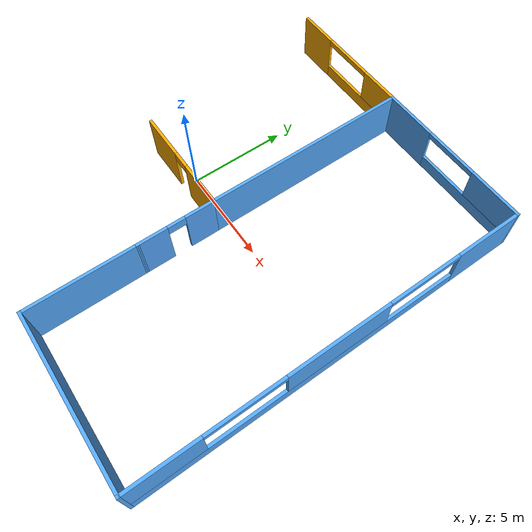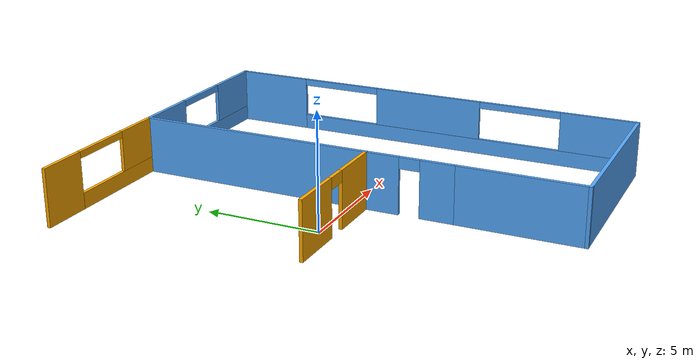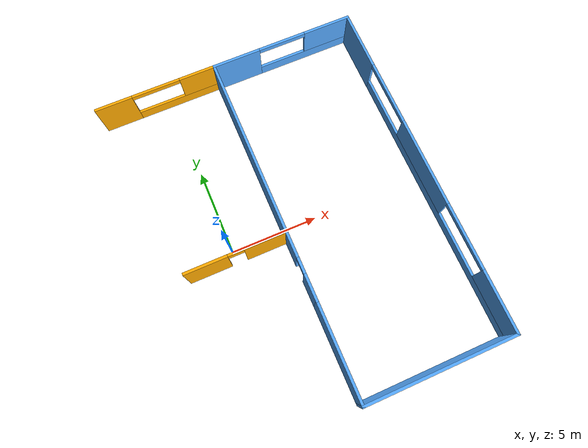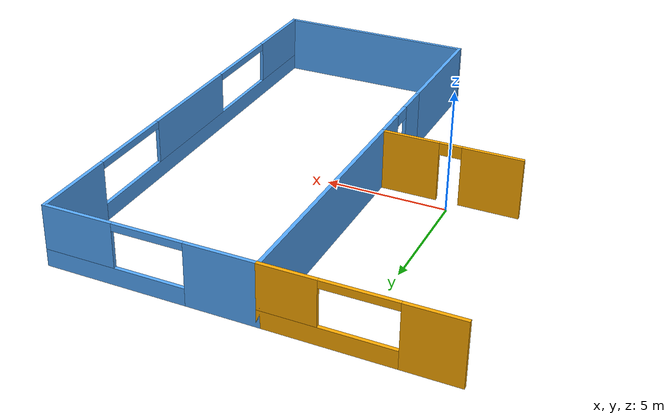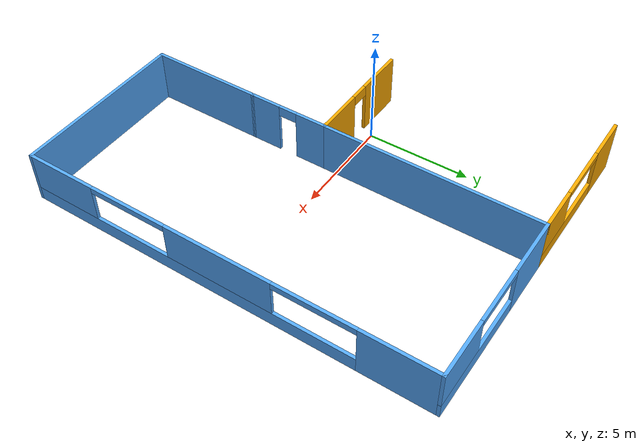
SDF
<sdf version="1.6">
 <model name="Building">
  <link name="Wall_10">
   <pose>2.99997 -7.175 0 0 -0 1.5708</pose>
   <visual name="Wall_10_Visual">
    <pose>0 0 1.25 0 -0 0</pose>
    <geometry><box><size>5.5 0.15 2.5</size></box></geometry>
    <material>
     <script><uri>file://media/materials/scripts/gazebo.material</uri><name>Gazebo/Grey</name></script>
     <ambient>0.333333 0.666667 1 1</ambient>
     <diffuse>0.7 0.7 0.7 1</diffuse>
     <specular>0.01 0.01 0.01 1</specular>
     <emissive>0 0 0 1</emissive>
    </material>
    <meta><layer>0</layer></meta>
   </visual>
   <collision name="Wall_10_Collision">
    <pose>0 0 1.25 0 -0 0</pose>
    <geometry><box><size>5.5 0.15 2.5</size></box></geometry>
    <surface>
     <friction>
      <ode><mu>1</mu><mu2>1</mu2><fdir1>0 0 0</fdir1><slip1>0</slip1><slip2>0</slip2></ode>
      <torsional>
       <coefficient>1</coefficient>
       <patch_radius>0</patch_radius>
       <surface_radius>0</surface_radius>
       <use_patch_radius>1</use_patch_radius>
       <ode><slip>0</slip></ode>
      </torsional>
     </friction>
     <bounce><restitution_coefficient>0</restitution_coefficient><threshold>1e+06</threshold></bounce>
     <contact>
      <collide_without_contact>0</collide_without_contact>
      <collide_without_contact_bitmask>1</collide_without_contact_bitmask>
      <collide_bitmask>1</collide_bitmask>
      <ode>
       <soft_cfm>0</soft_cfm>
       <soft_erp>0.2</soft_erp>
       <kp>1e+13</kp>
       <kd>1</kd>
       <max_vel>0.01</max_vel>
       <min_depth>0</min_depth>
      </ode>
      <bullet>
       <split_impulse>1</split_impulse>
       <split_impulse_penetration_threshold>-0.01</split_impulse_penetration_threshold>
       <soft_cfm>0</soft_cfm>
       <soft_erp>0.2</soft_erp>
       <kp>1e+13</kp>
       <kd>1</kd>
      </bullet>
     </contact>
    </surface>
   </collision>
  </link>
  <link name="Wall_53">
   <pose>0.190752 -0.639237 0 0 -0 0</pose>
   <visual name="Wall_53_Visual_0">
    <pose>-1.66349 0 1.25 0 -0 0</pose>
    <geometry><box><size>2.42302 0.15 2.5</size></box></geometry>
    <material>
     <script><uri>file://media/materials/scripts/gazebo.material</uri><name>Gazebo/Grey</name></script>
     <ambient>1 0.666667 0 1</ambient>
     <diffuse>0.7 0.7 0.7 1</diffuse>
     <specular>0.01 0.01 0.01 1</specular>
     <emissive>0 0 0 1</emissive>
    </material>
    <meta><layer>0</layer></meta>
   </visual>
   <visual name="Wall_53_Visual_1">
    <pose>1.66151 0 1.25 0 -0 0</pose>
    <geometry><box><size>2.42698 0.15 2.5</size></box></geometry>
    <material>
     <script><uri>file://media/materials/scripts/gazebo.material</uri><name>Gazebo/Grey</name></script>
     <ambient>1 0.666667 0 1</ambient>
     <diffuse>0.7 0.7 0.7 1</diffuse>
     <specular>0.01 0.01 0.01 1</specular>
     <emissive>0 0 0 1</emissive>
    </material>
    <meta><layer>0</layer></meta>
   </visual>
   <visual name="Wall_53_Visual_2">
    <pose>-0.001979 0 2.25 0 -0 0</pose>
    <geometry><box><size>0.9 0.15 0.5</size></box></geometry>
    <material>
     <script><uri>file://media/materials/scripts/gazebo.material</uri><name>Gazebo/Grey</name></script>
     <ambient>1 0.666667 0 1</ambient>
     <diffuse>0.7 0.7 0.7 1</diffuse>
     <specular>0.01 0.01 0.01 1</specular>
     <emissive>0 0 0 1</emissive>
    </material>
    <meta><layer>0</layer></meta>
   </visual>
   <collision name="Wall_53_Collision_0">
    <pose>-1.66349 0 1.25 0 -0 0</pose>
    <geometry><box><size>2.42302 0.15 2.5</size></box></geometry>
    <surface>
     <friction>
      <ode><mu>1</mu><mu2>1</mu2><fdir1>0 0 0</fdir1><slip1>0</slip1><slip2>0</slip2></ode>
      <torsional>
       <coefficient>1</coefficient>
       <patch_radius>0</patch_radius>
       <surface_radius>0</surface_radius>
       <use_patch_radius>1</use_patch_radius>
       <ode><slip>0</slip></ode>
      </torsional>
     </friction>
     <bounce><restitution_coefficient>0</restitution_coefficient><threshold>1e+06</threshold></bounce>
     <contact>
      <collide_without_contact>0</collide_without_contact>
      <collide_without_contact_bitmask>1</collide_without_contact_bitmask>
      <collide_bitmask>1</collide_bitmask>
      <ode>
       <soft_cfm>0</soft_cfm>
       <soft_erp>0.2</soft_erp>
       <kp>1e+13</kp>
       <kd>1</kd>
       <max_vel>0.01</max_vel>
       <min_depth>0</min_depth>
      </ode>
      <bullet>
       <split_impulse>1</split_impulse>
       <split_impulse_penetration_threshold>-0.01</split_impulse_penetration_threshold>
       <soft_cfm>0</soft_cfm>
       <soft_erp>0.2</soft_erp>
       <kp>1e+13</kp>
       <kd>1</kd>
      </bullet>
     </contact>
    </surface>
   </collision>
   <collision name="Wall_53_Collision_1">
    <pose>1.66151 0 1.25 0 -0 0</pose>
    <geometry><box><size>2.42698 0.15 2.5</size></box></geometry>
    <surface>
     <friction>
      <ode><mu>1</mu><mu2>1</mu2><fdir1>0 0 0</fdir1><slip1>0</slip1><slip2>0</slip2></ode>
      <torsional>
       <coefficient>1</coefficient>
       <patch_radius>0</patch_radius>
       <surface_radius>0</surface_radius>
       <use_patch_radius>1</use_patch_radius>
       <ode><slip>0</slip></ode>
      </torsional>
     </friction>
     <bounce><restitution_coefficient>0</restitution_coefficient><threshold>1e+06</threshold></bounce>
     <contact>
      <collide_without_contact>0</collide_without_contact>
      <collide_without_contact_bitmask>1</collide_without_contact_bitmask>
      <collide_bitmask>1</collide_bitmask>
      <ode>
       <soft_cfm>0</soft_cfm>
       <soft_erp>0.2</soft_erp>
       <kp>1e+13</kp>
       <kd>1</kd>
       <max_vel>0.01</max_vel>
       <min_depth>0</min_depth>
      </ode>
      <bullet>
       <split_impulse>1</split_impulse>
       <split_impulse_penetration_threshold>-0.01</split_impulse_penetration_threshold>
       <soft_cfm>0</soft_cfm>
       <soft_erp>0.2</soft_erp>
       <kp>1e+13</kp>
       <kd>1</kd>
      </bullet>
     </contact>
    </surface>
   </collision>
   <collision name="Wall_53_Collision_2">
    <pose>-0.001979 0 2.25 0 -0 0</pose>
    <geometry><box><size>0.9 0.15 0.5</size></box></geometry>
    <surface>
     <friction>
      <ode><mu>1</mu><mu2>1</mu2><fdir1>0 0 0</fdir1><slip1>0</slip1><slip2>0</slip2></ode>
      <torsional>
       <coefficient>1</coefficient>
       <patch_radius>0</patch_radius>
       <surface_radius>0</surface_radius>
       <use_patch_radius>1</use_patch_radius>
       <ode><slip>0</slip></ode>
      </torsional>
     </friction>
     <bounce><restitution_coefficient>0</restitution_coefficient><threshold>1e+06</threshold></bounce>
     <contact>
      <collide_without_contact>0</collide_without_contact>
      <collide_without_contact_bitmask>1</collide_without_contact_bitmask>
      <collide_bitmask>1</collide_bitmask>
      <ode>
       <soft_cfm>0</soft_cfm>
       <soft_erp>0.2</soft_erp>
       <kp>1e+13</kp>
       <kd>1</kd>
       <max_vel>0.01</max_vel>
       <min_depth>0</min_depth>
      </ode>
      <bullet>
       <split_impulse>1</split_impulse>
       <split_impulse_penetration_threshold>-0.01</split_impulse_penetration_threshold>
       <soft_cfm>0</soft_cfm>
       <soft_erp>0.2</soft_erp>
       <kp>1e+13</kp>
       <kd>1</kd>
      </bullet>
     </contact>
    </surface>
   </collision>
  </link>
  <link name="Wall_64">
   <pose>-0.500034 9.85 0 0 -0 0</pose>
   <visual name="Wall_64_Visual_0">
    <pose>-2.49241 0 1.25 0 -0 0</pose>
    <geometry><box><size>2.16519 0.15 2.5</size></box></geometry>
    <material>
     <script><uri>file://media/materials/scripts/gazebo.material</uri><name>Gazebo/Grey</name></script>
     <ambient>1 0.666667 0 1</ambient>
     <diffuse>0.7 0.7 0.7 1</diffuse>
     <specular>0.01 0.01 0.01 1</specular>
     <emissive>0 0 0 1</emissive>
    </material>
    <meta><layer>0</layer></meta>
   </visual>
   <visual name="Wall_64_Visual_1">
    <pose>1.08259 0 0.35 0 -0 0</pose>
    <geometry><box><size>4.98481 0.15 0.7</size></box></geometry>
    <material>
     <script><uri>file://media/materials/scripts/gazebo.material</uri><name>Gazebo/Grey</name></script>
     <ambient>1 0.666667 0 1</ambient>
     <diffuse>0.7 0.7 0.7 1</diffuse>
     <specular>0.01 0.01 0.01 1</specular>
     <emissive>0 0 0 1</emissive>
    </material>
    <meta><layer>0</layer></meta>
   </visual>
   <visual name="Wall_64_Visual_2">
    <pose>2.48259 0 1.6 0 -0 0</pose>
    <geometry><box><size>2.18481 0.15 1.8</size></box></geometry>
    <material>
     <script><uri>file://media/materials/scripts/gazebo.material</uri><name>Gazebo/Grey</name></script>
     <ambient>1 0.666667 0 1</ambient>
     <diffuse>0.7 0.7 0.7 1</diffuse>
     <specular>0.01 0.01 0.01 1</specular>
     <emissive>0 0 0 1</emissive>
    </material>
    <meta><layer>0</layer></meta>
   </visual>
   <visual name="Wall_64_Visual_3">
    <pose>-0.009811 0 2.35 0 -0 0</pose>
    <geometry><box><size>2.8 0.15 0.3</size></box></geometry>
    <material>
     <script><uri>file://media/materials/scripts/gazebo.material</uri><name>Gazebo/Grey</name></script>
     <ambient>1 0.666667 0 1</ambient>
     <diffuse>0.7 0.7 0.7 1</diffuse>
     <specular>0.01 0.01 0.01 1</specular>
     <emissive>0 0 0 1</emissive>
    </material>
    <meta><layer>0</layer></meta>
   </visual>
   <collision name="Wall_64_Collision_0">
    <pose>-2.49241 0 1.25 0 -0 0</pose>
    <geometry><box><size>2.16519 0.15 2.5</size></box></geometry>
    <surface>
     <friction>
      <ode><mu>1</mu><mu2>1</mu2><fdir1>0 0 0</fdir1><slip1>0</slip1><slip2>0</slip2></ode>
      <torsional>
       <coefficient>1</coefficient>
       <patch_radius>0</patch_radius>
       <surface_radius>0</surface_radius>
       <use_patch_radius>1</use_patch_radius>
       <ode><slip>0</slip></ode>
      </torsional>
     </friction>
     <bounce><restitution_coefficient>0</restitution_coefficient><threshold>1e+06</threshold></bounce>
     <contact>
      <collide_without_contact>0</collide_without_contact>
      <collide_without_contact_bitmask>1</collide_without_contact_bitmask>
      <collide_bitmask>1</collide_bitmask>
      <ode>
       <soft_cfm>0</soft_cfm>
       <soft_erp>0.2</soft_erp>
       <kp>1e+13</kp>
       <kd>1</kd>
       <max_vel>0.01</max_vel>
       <min_depth>0</min_depth>
      </ode>
      <bullet>
       <split_impulse>1</split_impulse>
       <split_impulse_penetration_threshold>-0.01</split_impulse_penetration_threshold>
       <soft_cfm>0</soft_cfm>
       <soft_erp>0.2</soft_erp>
       <kp>1e+13</kp>
       <kd>1</kd>
      </bullet>
     </contact>
    </surface>
   </collision>
   <collision name="Wall_64_Collision_1">
    <pose>1.08259 0 0.35 0 -0 0</pose>
    <geometry><box><size>4.98481 0.15 0.7</size></box></geometry>
    <surface>
     <friction>
      <ode><mu>1</mu><mu2>1</mu2><fdir1>0 0 0</fdir1><slip1>0</slip1><slip2>0</slip2></ode>
      <torsional>
       <coefficient>1</coefficient>
       <patch_radius>0</patch_radius>
       <surface_radius>0</surface_radius>
       <use_patch_radius>1</use_patch_radius>
       <ode><slip>0</slip></ode>
      </torsional>
     </friction>
     <bounce><restitution_coefficient>0</restitution_coefficient><threshold>1e+06</threshold></bounce>
     <contact>
      <collide_without_contact>0</collide_without_contact>
      <collide_without_contact_bitmask>1</collide_without_contact_bitmask>
      <collide_bitmask>1</collide_bitmask>
      <ode>
       <soft_cfm>0</soft_cfm>
       <soft_erp>0.2</soft_erp>
       <kp>1e+13</kp>
       <kd>1</kd>
       <max_vel>0.01</max_vel>
       <min_depth>0</min_depth>
      </ode>
      <bullet>
       <split_impulse>1</split_impulse>
       <split_impulse_penetration_threshold>-0.01</split_impulse_penetration_threshold>
       <soft_cfm>0</soft_cfm>
       <soft_erp>0.2</soft_erp>
       <kp>1e+13</kp>
       <kd>1</kd>
      </bullet>
     </contact>
    </surface>
   </collision>
   <collision name="Wall_64_Collision_2">
    <pose>2.48259 0 1.6 0 -0 0</pose>
    <geometry><box><size>2.18481 0.15 1.8</size></box></geometry>
    <surface>
     <friction>
      <ode><mu>1</mu><mu2>1</mu2><fdir1>0 0 0</fdir1><slip1>0</slip1><slip2>0</slip2></ode>
      <torsional>
       <coefficient>1</coefficient>
       <patch_radius>0</patch_radius>
       <surface_radius>0</surface_radius>
       <use_patch_radius>1</use_patch_radius>
       <ode><slip>0</slip></ode>
      </torsional>
     </friction>
     <bounce><restitution_coefficient>0</restitution_coefficient><threshold>1e+06</threshold></bounce>
     <contact>
      <collide_without_contact>0</collide_without_contact>
      <collide_without_contact_bitmask>1</collide_without_contact_bitmask>
      <collide_bitmask>1</collide_bitmask>
      <ode>
       <soft_cfm>0</soft_cfm>
       <soft_erp>0.2</soft_erp>
       <kp>1e+13</kp>
       <kd>1</kd>
       <max_vel>0.01</max_vel>
       <min_depth>0</min_depth>
      </ode>
      <bullet>
       <split_impulse>1</split_impulse>
       <split_impulse_penetration_threshold>-0.01</split_impulse_penetration_threshold>
       <soft_cfm>0</soft_cfm>
       <soft_erp>0.2</soft_erp>
       <kp>1e+13</kp>
       <kd>1</kd>
      </bullet>
     </contact>
    </surface>
   </collision>
   <collision name="Wall_64_Collision_3">
    <pose>-0.009811 0 2.35 0 -0 0</pose>
    <geometry><box><size>2.8 0.15 0.3</size></box></geometry>
    <surface>
     <friction>
      <ode><mu>1</mu><mu2>1</mu2><fdir1>0 0 0</fdir1><slip1>0</slip1><slip2>0</slip2></ode>
      <torsional>
       <coefficient>1</coefficient>
       <patch_radius>0</patch_radius>
       <surface_radius>0</surface_radius>
       <use_patch_radius>1</use_patch_radius>
       <ode><slip>0</slip></ode>
      </torsional>
     </friction>
     <bounce><restitution_coefficient>0</restitution_coefficient><threshold>1e+06</threshold></bounce>
     <contact>
      <collide_without_contact>0</collide_without_contact>
      <collide_without_contact_bitmask>1</collide_without_contact_bitmask>
      <collide_bitmask>1</collide_bitmask>
      <ode>
       <soft_cfm>0</soft_cfm>
       <soft_erp>0.2</soft_erp>
       <kp>1e+13</kp>
       <kd>1</kd>
       <max_vel>0.01</max_vel>
       <min_depth>0</min_depth>
      </ode>
      <bullet>
       <split_impulse>1</split_impulse>
       <split_impulse_penetration_threshold>-0.01</split_impulse_penetration_threshold>
       <soft_cfm>0</soft_cfm>
       <soft_erp>0.2</soft_erp>
       <kp>1e+13</kp>
       <kd>1</kd>
      </bullet>
     </contact>
    </surface>
   </collision>
  </link>
  <link name="Wall_65">
   <pose>7.175 9.84997 0 0 0 -7e-06</pose>
   <visual name="Wall_65_Visual_0">
    <pose>-2.82562 0 1.25 0 -0 0</pose>
    <geometry><box><size>2.84883 0.15 2.5</size></box></geometry>
    <material>
     <script><uri>file://media/materials/scripts/gazebo.material</uri><name>Gazebo/Grey</name></script>
     <ambient>0.333333 0.666667 1 1</ambient>
     <diffuse>0.7 0.7 0.7 1</diffuse>
     <specular>0.01 0.01 0.01 1</specular>
     <emissive>0 0 0 1</emissive>
    </material>
    <meta><layer>0</layer></meta>
   </visual>
   <visual name="Wall_65_Visual_1">
    <pose>1.42442 0 0.35 0 -0 0</pose>
    <geometry><box><size>5.65124 0.15 0.7</size></box></geometry>
    <material>
     <script><uri>file://media/materials/scripts/gazebo.material</uri><name>Gazebo/Grey</name></script>
     <ambient>0.333333 0.666667 1 1</ambient>
     <diffuse>0.7 0.7 0.7 1</diffuse>
     <specular>0.01 0.01 0.01 1</specular>
     <emissive>0 0 0 1</emissive>
    </material>
    <meta><layer>0</layer></meta>
   </visual>
   <visual name="Wall_65_Visual_2">
    <pose>2.82442 0 1.6 0 -0 0</pose>
    <geometry><box><size>2.85124 0.15 1.8</size></box></geometry>
    <material>
     <script><uri>file://media/materials/scripts/gazebo.material</uri><name>Gazebo/Grey</name></script>
     <ambient>0.333333 0.666667 1 1</ambient>
     <diffuse>0.7 0.7 0.7 1</diffuse>
     <specular>0.01 0.01 0.01 1</specular>
     <emissive>0 0 0 1</emissive>
    </material>
    <meta><layer>0</layer></meta>
   </visual>
   <visual name="Wall_65_Visual_3">
    <pose>-0.001203 0 2.35 0 -0 0</pose>
    <geometry><box><size>2.8 0.15 0.3</size></box></geometry>
    <material>
     <script><uri>file://media/materials/scripts/gazebo.material</uri><name>Gazebo/Grey</name></script>
     <ambient>0.333333 0.666667 1 1</ambient>
     <diffuse>0.7 0.7 0.7 1</diffuse>
     <specular>0.01 0.01 0.01 1</specular>
     <emissive>0 0 0 1</emissive>
    </material>
    <meta><layer>0</layer></meta>
   </visual>
   <collision name="Wall_65_Collision_0">
    <pose>-2.82562 0 1.25 0 -0 0</pose>
    <geometry><box><size>2.84883 0.15 2.5</size></box></geometry>
    <surface>
     <friction>
      <ode><mu>1</mu><mu2>1</mu2><fdir1>0 0 0</fdir1><slip1>0</slip1><slip2>0</slip2></ode>
      <torsional>
       <coefficient>1</coefficient>
       <patch_radius>0</patch_radius>
       <surface_radius>0</surface_radius>
       <use_patch_radius>1</use_patch_radius>
       <ode><slip>0</slip></ode>
      </torsional>
     </friction>
     <bounce><restitution_coefficient>0</restitution_coefficient><threshold>1e+06</threshold></bounce>
     <contact>
      <collide_without_contact>0</collide_without_contact>
      <collide_without_contact_bitmask>1</collide_without_contact_bitmask>
      <collide_bitmask>1</collide_bitmask>
      <ode>
       <soft_cfm>0</soft_cfm>
       <soft_erp>0.2</soft_erp>
       <kp>1e+13</kp>
       <kd>1</kd>
       <max_vel>0.01</max_vel>
       <min_depth>0</min_depth>
      </ode>
      <bullet>
       <split_impulse>1</split_impulse>
       <split_impulse_penetration_threshold>-0.01</split_impulse_penetration_threshold>
       <soft_cfm>0</soft_cfm>
       <soft_erp>0.2</soft_erp>
       <kp>1e+13</kp>
       <kd>1</kd>
      </bullet>
     </contact>
    </surface>
   </collision>
   <collision name="Wall_65_Collision_1">
    <pose>1.42442 0 0.35 0 -0 0</pose>
    <geometry><box><size>5.65124 0.15 0.7</size></box></geometry>
    <surface>
     <friction>
      <ode><mu>1</mu><mu2>1</mu2><fdir1>0 0 0</fdir1><slip1>0</slip1><slip2>0</slip2></ode>
      <torsional>
       <coefficient>1</coefficient>
       <patch_radius>0</patch_radius>
       <surface_radius>0</surface_radius>
       <use_patch_radius>1</use_patch_radius>
       <ode><slip>0</slip></ode>
      </torsional>
     </friction>
     <bounce><restitution_coefficient>0</restitution_coefficient><threshold>1e+06</threshold></bounce>
     <contact>
      <collide_without_contact>0</collide_without_contact>
      <collide_without_contact_bitmask>1</collide_without_contact_bitmask>
      <collide_bitmask>1</collide_bitmask>
      <ode>
       <soft_cfm>0</soft_cfm>
       <soft_erp>0.2</soft_erp>
       <kp>1e+13</kp>
       <kd>1</kd>
       <max_vel>0.01</max_vel>
       <min_depth>0</min_depth>
      </ode>
      <bullet>
       <split_impulse>1</split_impulse>
       <split_impulse_penetration_threshold>-0.01</split_impulse_penetration_threshold>
       <soft_cfm>0</soft_cfm>
       <soft_erp>0.2</soft_erp>
       <kp>1e+13</kp>
       <kd>1</kd>
      </bullet>
     </contact>
    </surface>
   </collision>
   <collision name="Wall_65_Collision_2">
    <pose>2.82442 0 1.6 0 -0 0</pose>
    <geometry><box><size>2.85124 0.15 1.8</size></box></geometry>
    <surface>
     <friction>
      <ode><mu>1</mu><mu2>1</mu2><fdir1>0 0 0</fdir1><slip1>0</slip1><slip2>0</slip2></ode>
      <torsional>
       <coefficient>1</coefficient>
       <patch_radius>0</patch_radius>
       <surface_radius>0</surface_radius>
       <use_patch_radius>1</use_patch_radius>
       <ode><slip>0</slip></ode>
      </torsional>
     </friction>
     <bounce><restitution_coefficient>0</restitution_coefficient><threshold>1e+06</threshold></bounce>
     <contact>
      <collide_without_contact>0</collide_without_contact>
      <collide_without_contact_bitmask>1</collide_without_contact_bitmask>
      <collide_bitmask>1</collide_bitmask>
      <ode>
       <soft_cfm>0</soft_cfm>
       <soft_erp>0.2</soft_erp>
       <kp>1e+13</kp>
       <kd>1</kd>
       <max_vel>0.01</max_vel>
       <min_depth>0</min_depth>
      </ode>
      <bullet>
       <split_impulse>1</split_impulse>
       <split_impulse_penetration_threshold>-0.01</split_impulse_penetration_threshold>
       <soft_cfm>0</soft_cfm>
       <soft_erp>0.2</soft_erp>
       <kp>1e+13</kp>
       <kd>1</kd>
      </bullet>
     </contact>
    </surface>
   </collision>
   <collision name="Wall_65_Collision_3">
    <pose>-0.001203 0 2.35 0 -0 0</pose>
    <geometry><box><size>2.8 0.15 0.3</size></box></geometry>
    <surface>
     <friction>
      <ode><mu>1</mu><mu2>1</mu2><fdir1>0 0 0</fdir1><slip1>0</slip1><slip2>0</slip2></ode>
      <torsional>
       <coefficient>1</coefficient>
       <patch_radius>0</patch_radius>
       <surface_radius>0</surface_radius>
       <use_patch_radius>1</use_patch_radius>
       <ode><slip>0</slip></ode>
      </torsional>
     </friction>
     <bounce><restitution_coefficient>0</restitution_coefficient><threshold>1e+06</threshold></bounce>
     <contact>
      <collide_without_contact>0</collide_without_contact>
      <collide_without_contact_bitmask>1</collide_without_contact_bitmask>
      <collide_bitmask>1</collide_bitmask>
      <ode>
       <soft_cfm>0</soft_cfm>
       <soft_erp>0.2</soft_erp>
       <kp>1e+13</kp>
       <kd>1</kd>
       <max_vel>0.01</max_vel>
       <min_depth>0</min_depth>
      </ode>
      <bullet>
       <split_impulse>1</split_impulse>
       <split_impulse_penetration_threshold>-0.01</split_impulse_penetration_threshold>
       <soft_cfm>0</soft_cfm>
       <soft_erp>0.2</soft_erp>
       <kp>1e+13</kp>
       <kd>1</kd>
      </bullet>
     </contact>
    </surface>
   </collision>
  </link>
  <link name="Wall_73">
   <pose>2.99536 -2.56962 0 0 -0 1.57318</pose>
   <visual name="Wall_73_Visual_0">
    <pose>-1.22897 0 1.25 0 -0 0</pose>
    <geometry><box><size>1.55284 0.15 2.5</size></box></geometry>
    <material>
     <script><uri>file://media/materials/scripts/gazebo.material</uri><name>Gazebo/Grey</name></script>
     <ambient>0.333333 0.666667 1 1</ambient>
     <diffuse>0.7 0.7 0.7 1</diffuse>
     <specular>0.01 0.01 0.01 1</specular>
     <emissive>0 0 0 1</emissive>
    </material>
    <meta><layer>0</layer></meta>
   </visual>
   <visual name="Wall_73_Visual_1">
    <pose>1.22642 0 1.25 0 -0 0</pose>
    <geometry><box><size>1.55793 0.15 2.5</size></box></geometry>
    <material>
     <script><uri>file://media/materials/scripts/gazebo.material</uri><name>Gazebo/Grey</name></script>
     <ambient>0.333333 0.666667 1 1</ambient>
     <diffuse>0.7 0.7 0.7 1</diffuse>
     <specular>0.01 0.01 0.01 1</specular>
     <emissive>0 0 0 1</emissive>
    </material>
    <meta><layer>0</layer></meta>
   </visual>
   <visual name="Wall_73_Visual_2">
    <pose>-0.002543 0 2.25 0 -0 0</pose>
    <geometry><box><size>0.9 0.15 0.5</size></box></geometry>
    <material>
     <script><uri>file://media/materials/scripts/gazebo.material</uri><name>Gazebo/Grey</name></script>
     <ambient>0.333333 0.666667 1 1</ambient>
     <diffuse>0.7 0.7 0.7 1</diffuse>
     <specular>0.01 0.01 0.01 1</specular>
     <emissive>0 0 0 1</emissive>
    </material>
    <meta><layer>0</layer></meta>
   </visual>
   <collision name="Wall_73_Collision_0">
    <pose>-1.22897 0 1.25 0 -0 0</pose>
    <geometry><box><size>1.55284 0.15 2.5</size></box></geometry>
    <surface>
     <friction>
      <ode><mu>1</mu><mu2>1</mu2><fdir1>0 0 0</fdir1><slip1>0</slip1><slip2>0</slip2></ode>
      <torsional>
       <coefficient>1</coefficient>
       <patch_radius>0</patch_radius>
       <surface_radius>0</surface_radius>
       <use_patch_radius>1</use_patch_radius>
       <ode><slip>0</slip></ode>
      </torsional>
     </friction>
     <bounce><restitution_coefficient>0</restitution_coefficient><threshold>1e+06</threshold></bounce>
     <contact>
      <collide_without_contact>0</collide_without_contact>
      <collide_without_contact_bitmask>1</collide_without_contact_bitmask>
      <collide_bitmask>1</collide_bitmask>
      <ode>
       <soft_cfm>0</soft_cfm>
       <soft_erp>0.2</soft_erp>
       <kp>1e+13</kp>
       <kd>1</kd>
       <max_vel>0.01</max_vel>
       <min_depth>0</min_depth>
      </ode>
      <bullet>
       <split_impulse>1</split_impulse>
       <split_impulse_penetration_threshold>-0.01</split_impulse_penetration_threshold>
       <soft_cfm>0</soft_cfm>
       <soft_erp>0.2</soft_erp>
       <kp>1e+13</kp>
       <kd>1</kd>
      </bullet>
     </contact>
    </surface>
   </collision>
   <collision name="Wall_73_Collision_1">
    <pose>1.22642 0 1.25 0 -0 0</pose>
    <geometry><box><size>1.55793 0.15 2.5</size></box></geometry>
    <surface>
     <friction>
      <ode><mu>1</mu><mu2>1</mu2><fdir1>0 0 0</fdir1><slip1>0</slip1><slip2>0</slip2></ode>
      <torsional>
       <coefficient>1</coefficient>
       <patch_radius>0</patch_radius>
       <surface_radius>0</surface_radius>
       <use_patch_radius>1</use_patch_radius>
       <ode><slip>0</slip></ode>
      </torsional>
     </friction>
     <bounce><restitution_coefficient>0</restitution_coefficient><threshold>1e+06</threshold></bounce>
     <contact>
      <collide_without_contact>0</collide_without_contact>
      <collide_without_contact_bitmask>1</collide_without_contact_bitmask>
      <collide_bitmask>1</collide_bitmask>
      <ode>
       <soft_cfm>0</soft_cfm>
       <soft_erp>0.2</soft_erp>
       <kp>1e+13</kp>
       <kd>1</kd>
       <max_vel>0.01</max_vel>
       <min_depth>0</min_depth>
      </ode>
      <bullet>
       <split_impulse>1</split_impulse>
       <split_impulse_penetration_threshold>-0.01</split_impulse_penetration_threshold>
       <soft_cfm>0</soft_cfm>
       <soft_erp>0.2</soft_erp>
       <kp>1e+13</kp>
       <kd>1</kd>
      </bullet>
     </contact>
    </surface>
   </collision>
   <collision name="Wall_73_Collision_2">
    <pose>-0.002543 0 2.25 0 -0 0</pose>
    <geometry><box><size>0.9 0.15 0.5</size></box></geometry>
    <surface>
     <friction>
      <ode><mu>1</mu><mu2>1</mu2><fdir1>0 0 0</fdir1><slip1>0</slip1><slip2>0</slip2></ode>
      <torsional>
       <coefficient>1</coefficient>
       <patch_radius>0</patch_radius>
       <surface_radius>0</surface_radius>
       <use_patch_radius>1</use_patch_radius>
       <ode><slip>0</slip></ode>
      </torsional>
     </friction>
     <bounce><restitution_coefficient>0</restitution_coefficient><threshold>1e+06</threshold></bounce>
     <contact>
      <collide_without_contact>0</collide_without_contact>
      <collide_without_contact_bitmask>1</collide_without_contact_bitmask>
      <collide_bitmask>1</collide_bitmask>
      <ode>
       <soft_cfm>0</soft_cfm>
       <soft_erp>0.2</soft_erp>
       <kp>1e+13</kp>
       <kd>1</kd>
       <max_vel>0.01</max_vel>
       <min_depth>0</min_depth>
      </ode>
      <bullet>
       <split_impulse>1</split_impulse>
       <split_impulse_penetration_threshold>-0.01</split_impulse_penetration_threshold>
       <soft_cfm>0</soft_cfm>
       <soft_erp>0.2</soft_erp>
       <kp>1e+13</kp>
       <kd>1</kd>
      </bullet>
     </contact>
    </surface>
   </collision>
  </link>
  <link name="Wall_74">
   <pose>2.99075 4.53576 0 0 -0 1.5708</pose>
   <visual name="Wall_74_Visual">
    <pose>0 0 1.25 0 -0 0</pose>
    <geometry><box><size>10.5 0.15 2.5</size></box></geometry>
    <material>
     <script><uri>file://media/materials/scripts/gazebo.material</uri><name>Gazebo/Grey</name></script>
     <ambient>0.333333 0.666667 1 1</ambient>
     <diffuse>0.7 0.7 0.7 1</diffuse>
     <specular>0.01 0.01 0.01 1</specular>
     <emissive>0 0 0 1</emissive>
    </material>
    <meta><layer>0</layer></meta>
   </visual>
   <collision name="Wall_74_Collision">
    <pose>0 0 1.25 0 -0 0</pose>
    <geometry><box><size>10.5 0.15 2.5</size></box></geometry>
    <surface>
     <friction>
      <ode><mu>1</mu><mu2>1</mu2><fdir1>0 0 0</fdir1><slip1>0</slip1><slip2>0</slip2></ode>
      <torsional>
       <coefficient>1</coefficient>
       <patch_radius>0</patch_radius>
       <surface_radius>0</surface_radius>
       <use_patch_radius>1</use_patch_radius>
       <ode><slip>0</slip></ode>
      </torsional>
     </friction>
     <bounce><restitution_coefficient>0</restitution_coefficient><threshold>1e+06</threshold></bounce>
     <contact>
      <collide_without_contact>0</collide_without_contact>
      <collide_without_contact_bitmask>1</collide_without_contact_bitmask>
      <collide_bitmask>1</collide_bitmask>
      <ode>
       <soft_cfm>0</soft_cfm>
       <soft_erp>0.2</soft_erp>
       <kp>1e+13</kp>
       <kd>1</kd>
       <max_vel>0.01</max_vel>
       <min_depth>0</min_depth>
      </ode>
      <bullet>
       <split_impulse>1</split_impulse>
       <split_impulse_penetration_threshold>-0.01</split_impulse_penetration_threshold>
       <soft_cfm>0</soft_cfm>
       <soft_erp>0.2</soft_erp>
       <kp>1e+13</kp>
       <kd>1</kd>
      </bullet>
     </contact>
    </surface>
   </collision>
  </link>
  <link name="Wall_8">
   <pose>11.35 -2.9e-05 0 0 0 -1.5708</pose>
   <visual name="Wall_8_Visual_0">
    <pose>-8.14396 0 1.25 0 -0 0</pose>
    <geometry><box><size>3.56122 0.15 2.5</size></box></geometry>
    <material>
     <script><uri>file://media/materials/scripts/gazebo.material</uri><name>Gazebo/Grey</name></script>
     <ambient>0.333333 0.666667 1 1</ambient>
     <diffuse>0.7 0.7 0.7 1</diffuse>
     <specular>0.01 0.01 0.01 1</specular>
     <emissive>0 0 0 1</emissive>
    </material>
    <meta><layer>0</layer></meta>
   </visual>
   <visual name="Wall_8_Visual_1">
    <pose>1.78061 0 0.35 0 -0 0</pose>
    <geometry><box><size>16.2879 0.15 0.7</size></box></geometry>
    <material>
     <script><uri>file://media/materials/scripts/gazebo.material</uri><name>Gazebo/Grey</name></script>
     <ambient>0.333333 0.666667 1 1</ambient>
     <diffuse>0.7 0.7 0.7 1</diffuse>
     <specular>0.01 0.01 0.01 1</specular>
     <emissive>0 0 0 1</emissive>
    </material>
    <meta><layer>0</layer></meta>
   </visual>
   <visual name="Wall_8_Visual_2">
    <pose>0.025243 0 1.6 0 -0 0</pose>
    <geometry><box><size>5.1772 0.15 1.8</size></box></geometry>
    <material>
     <script><uri>file://media/materials/scripts/gazebo.material</uri><name>Gazebo/Grey</name></script>
     <ambient>0.333333 0.666667 1 1</ambient>
     <diffuse>0.7 0.7 0.7 1</diffuse>
     <specular>0.01 0.01 0.01 1</specular>
     <emissive>0 0 0 1</emissive>
    </material>
    <meta><layer>0</layer></meta>
   </visual>
   <visual name="Wall_8_Visual_3">
    <pose>8.16921 0 1.6 0 -0 0</pose>
    <geometry><box><size>3.51073 0.15 1.8</size></box></geometry>
    <material>
     <script><uri>file://media/materials/scripts/gazebo.material</uri><name>Gazebo/Grey</name></script>
     <ambient>0.333333 0.666667 1 1</ambient>
     <diffuse>0.7 0.7 0.7 1</diffuse>
     <specular>0.01 0.01 0.01 1</specular>
     <emissive>0 0 0 1</emissive>
    </material>
    <meta><layer>0</layer></meta>
   </visual>
   <visual name="Wall_8_Visual_4">
    <pose>-4.46335 0 2.35 0 -0 0</pose>
    <geometry><box><size>3.8 0.15 0.3</size></box></geometry>
    <material>
     <script><uri>file://media/materials/scripts/gazebo.material</uri><name>Gazebo/Grey</name></script>
     <ambient>0.333333 0.666667 1 1</ambient>
     <diffuse>0.7 0.7 0.7 1</diffuse>
     <specular>0.01 0.01 0.01 1</specular>
     <emissive>0 0 0 1</emissive>
    </material>
    <meta><layer>0</layer></meta>
   </visual>
   <visual name="Wall_8_Visual_5">
    <pose>4.51384 0 2.35 0 -0 0</pose>
    <geometry><box><size>3.8 0.15 0.3</size></box></geometry>
    <material>
     <script><uri>file://media/materials/scripts/gazebo.material</uri><name>Gazebo/Grey</name></script>
     <ambient>0.333333 0.666667 1 1</ambient>
     <diffuse>0.7 0.7 0.7 1</diffuse>
     <specular>0.01 0.01 0.01 1</specular>
     <emissive>0 0 0 1</emissive>
    </material>
    <meta><layer>0</layer></meta>
   </visual>
   <collision name="Wall_8_Collision_0">
    <pose>-8.14396 0 1.25 0 -0 0</pose>
    <geometry><box><size>3.56122 0.15 2.5</size></box></geometry>
    <surface>
     <friction>
      <ode><mu>1</mu><mu2>1</mu2><fdir1>0 0 0</fdir1><slip1>0</slip1><slip2>0</slip2></ode>
      <torsional>
       <coefficient>1</coefficient>
       <patch_radius>0</patch_radius>
       <surface_radius>0</surface_radius>
       <use_patch_radius>1</use_patch_radius>
       <ode><slip>0</slip></ode>
      </torsional>
     </friction>
     <bounce><restitution_coefficient>0</restitution_coefficient><threshold>1e+06</threshold></bounce>
     <contact>
      <collide_without_contact>0</collide_without_contact>
      <collide_without_contact_bitmask>1</collide_without_contact_bitmask>
      <collide_bitmask>1</collide_bitmask>
      <ode>
       <soft_cfm>0</soft_cfm>
       <soft_erp>0.2</soft_erp>
       <kp>1e+13</kp>
       <kd>1</kd>
       <max_vel>0.01</max_vel>
       <min_depth>0</min_depth>
      </ode>
      <bullet>
       <split_impulse>1</split_impulse>
       <split_impulse_penetration_threshold>-0.01</split_impulse_penetration_threshold>
       <soft_cfm>0</soft_cfm>
       <soft_erp>0.2</soft_erp>
       <kp>1e+13</kp>
       <kd>1</kd>
      </bullet>
     </contact>
    </surface>
   </collision>
   <collision name="Wall_8_Collision_1">
    <pose>1.78061 0 0.35 0 -0 0</pose>
    <geometry><box><size>16.2879 0.15 0.7</size></box></geometry>
    <surface>
     <friction>
      <ode><mu>1</mu><mu2>1</mu2><fdir1>0 0 0</fdir1><slip1>0</slip1><slip2>0</slip2></ode>
      <torsional>
       <coefficient>1</coefficient>
       <patch_radius>0</patch_radius>
       <surface_radius>0</surface_radius>
       <use_patch_radius>1</use_patch_radius>
       <ode><slip>0</slip></ode>
      </torsional>
     </friction>
     <bounce><restitution_coefficient>0</restitution_coefficient><threshold>1e+06</threshold></bounce>
     <contact>
      <collide_without_contact>0</collide_without_contact>
      <collide_without_contact_bitmask>1</collide_without_contact_bitmask>
      <collide_bitmask>1</collide_bitmask>
      <ode>
       <soft_cfm>0</soft_cfm>
       <soft_erp>0.2</soft_erp>
       <kp>1e+13</kp>
       <kd>1</kd>
       <max_vel>0.01</max_vel>
       <min_depth>0</min_depth>
      </ode>
      <bullet>
       <split_impulse>1</split_impulse>
       <split_impulse_penetration_threshold>-0.01</split_impulse_penetration_threshold>
       <soft_cfm>0</soft_cfm>
       <soft_erp>0.2</soft_erp>
       <kp>1e+13</kp>
       <kd>1</kd>
      </bullet>
     </contact>
    </surface>
   </collision>
   <collision name="Wall_8_Collision_5">
    <pose>4.51384 0 2.35 0 -0 0</pose>
    <geometry><box><size>3.8 0.15 0.3</size></box></geometry>
    <surface>
     <friction>
      <ode><mu>1</mu><mu2>1</mu2><fdir1>0 0 0</fdir1><slip1>0</slip1><slip2>0</slip2></ode>
      <torsional>
       <coefficient>1</coefficient>
       <patch_radius>0</patch_radius>
       <surface_radius>0</surface_radius>
       <use_patch_radius>1</use_patch_radius>
       <ode><slip>0</slip></ode>
      </torsional>
     </friction>
     <bounce><restitution_coefficient>0</restitution_coefficient><threshold>1e+06</threshold></bounce>
     <contact>
      <collide_without_contact>0</collide_without_contact>
      <collide_without_contact_bitmask>1</collide_without_contact_bitmask>
      <collide_bitmask>1</collide_bitmask>
      <ode>
       <soft_cfm>0</soft_cfm>
       <soft_erp>0.2</soft_erp>
       <kp>1e+13</kp>
       <kd>1</kd>
       <max_vel>0.01</max_vel>
       <min_depth>0</min_depth>
      </ode>
      <bullet>
       <split_impulse>1</split_impulse>
       <split_impulse_penetration_threshold>-0.01</split_impulse_penetration_threshold>
       <soft_cfm>0</soft_cfm>
       <soft_erp>0.2</soft_erp>
       <kp>1e+13</kp>
       <kd>1</kd>
      </bullet>
     </contact>
    </surface>
   </collision>
   <collision name="Wall_8_Collision_2">
    <pose>0.025243 0 1.6 0 -0 0</pose>
    <geometry><box><size>5.1772 0.15 1.8</size></box></geometry>
    <surface>
     <friction>
      <ode><mu>1</mu><mu2>1</mu2><fdir1>0 0 0</fdir1><slip1>0</slip1><slip2>0</slip2></ode>
      <torsional>
       <coefficient>1</coefficient>
       <patch_radius>0</patch_radius>
       <surface_radius>0</surface_radius>
       <use_patch_radius>1</use_patch_radius>
       <ode><slip>0</slip></ode>
      </torsional>
     </friction>
     <bounce><restitution_coefficient>0</restitution_coefficient><threshold>1e+06</threshold></bounce>
     <contact>
      <collide_without_contact>0</collide_without_contact>
      <collide_without_contact_bitmask>1</collide_without_contact_bitmask>
      <collide_bitmask>1</collide_bitmask>
      <ode>
       <soft_cfm>0</soft_cfm>
       <soft_erp>0.2</soft_erp>
       <kp>1e+13</kp>
       <kd>1</kd>
       <max_vel>0.01</max_vel>
       <min_depth>0</min_depth>
      </ode>
      <bullet>
       <split_impulse>1</split_impulse>
       <split_impulse_penetration_threshold>-0.01</split_impulse_penetration_threshold>
       <soft_cfm>0</soft_cfm>
       <soft_erp>0.2</soft_erp>
       <kp>1e+13</kp>
       <kd>1</kd>
      </bullet>
     </contact>
    </surface>
   </collision>
   <collision name="Wall_8_Collision_3">
    <pose>8.16921 0 1.6 0 -0 0</pose>
    <geometry><box><size>3.51073 0.15 1.8</size></box></geometry>
    <surface>
     <friction>
      <ode><mu>1</mu><mu2>1</mu2><fdir1>0 0 0</fdir1><slip1>0</slip1><slip2>0</slip2></ode>
      <torsional>
       <coefficient>1</coefficient>
       <patch_radius>0</patch_radius>
       <surface_radius>0</surface_radius>
       <use_patch_radius>1</use_patch_radius>
       <ode><slip>0</slip></ode>
      </torsional>
     </friction>
     <bounce><restitution_coefficient>0</restitution_coefficient><threshold>1e+06</threshold></bounce>
     <contact>
      <collide_without_contact>0</collide_without_contact>
      <collide_without_contact_bitmask>1</collide_without_contact_bitmask>
      <collide_bitmask>1</collide_bitmask>
      <ode>
       <soft_cfm>0</soft_cfm>
       <soft_erp>0.2</soft_erp>
       <kp>1e+13</kp>
       <kd>1</kd>
       <max_vel>0.01</max_vel>
       <min_depth>0</min_depth>
      </ode>
      <bullet>
       <split_impulse>1</split_impulse>
       <split_impulse_penetration_threshold>-0.01</split_impulse_penetration_threshold>
       <soft_cfm>0</soft_cfm>
       <soft_erp>0.2</soft_erp>
       <kp>1e+13</kp>
       <kd>1</kd>
      </bullet>
     </contact>
    </surface>
   </collision>
   <collision name="Wall_8_Collision_4">
    <pose>-4.46335 0 2.35 0 -0 0</pose>
    <geometry><box><size>3.8 0.15 0.3</size></box></geometry>
    <surface>
     <friction>
      <ode><mu>1</mu><mu2>1</mu2><fdir1>0 0 0</fdir1><slip1>0</slip1><slip2>0</slip2></ode>
      <torsional>
       <coefficient>1</coefficient>
       <patch_radius>0</patch_radius>
       <surface_radius>0</surface_radius>
       <use_patch_radius>1</use_patch_radius>
       <ode><slip>0</slip></ode>
      </torsional>
     </friction>
     <bounce><restitution_coefficient>0</restitution_coefficient><threshold>1e+06</threshold></bounce>
     <contact>
      <collide_without_contact>0</collide_without_contact>
      <collide_without_contact_bitmask>1</collide_without_contact_bitmask>
      <collide_bitmask>1</collide_bitmask>
      <ode>
       <soft_cfm>0</soft_cfm>
       <soft_erp>0.2</soft_erp>
       <kp>1e+13</kp>
       <kd>1</kd>
       <max_vel>0.01</max_vel>
       <min_depth>0</min_depth>
      </ode>
      <bullet>
       <split_impulse>1</split_impulse>
       <split_impulse_penetration_threshold>-0.01</split_impulse_penetration_threshold>
       <soft_cfm>0</soft_cfm>
       <soft_erp>0.2</soft_erp>
       <kp>1e+13</kp>
       <kd>1</kd>
      </bullet>
     </contact>
    </surface>
   </collision>
  </link>
  <link name="Wall_9">
   <pose>7.17497 -9.85 0 0 -0 3.14159</pose>
   <visual name="Wall_9_Visual">
    <pose>0 0 1.25 0 -0 0</pose>
    <geometry><box><size>8.5 0.15 2.5</size></box></geometry>
    <material>
     <script><uri>file://media/materials/scripts/gazebo.material</uri><name>Gazebo/Grey</name></script>
     <ambient>0.333333 0.666667 1 1</ambient>
     <diffuse>0.7 0.7 0.7 1</diffuse>
     <specular>0.01 0.01 0.01 1</specular>
     <emissive>0 0 0 1</emissive>
    </material>
    <meta><layer>0</layer></meta>
   </visual>
   <collision name="Wall_9_Collision">
    <pose>0 0 1.25 0 -0 0</pose>
    <geometry><box><size>8.5 0.15 2.5</size></box></geometry>
    <surface>
     <friction>
      <ode><mu>1</mu><mu2>1</mu2><fdir1>0 0 0</fdir1><slip1>0</slip1><slip2>0</slip2></ode>
      <torsional>
       <coefficient>1</coefficient>
       <patch_radius>0</patch_radius>
       <surface_radius>0</surface_radius>
       <use_patch_radius>1</use_patch_radius>
       <ode><slip>0</slip></ode>
      </torsional>
     </friction>
     <bounce><restitution_coefficient>0</restitution_coefficient><threshold>1e+06</threshold></bounce>
     <contact>
      <collide_without_contact>0</collide_without_contact>
      <collide_without_contact_bitmask>1</collide_without_contact_bitmask>
      <collide_bitmask>1</collide_bitmask>
      <ode>
       <soft_cfm>0</soft_cfm>
       <soft_erp>0.2</soft_erp>
       <kp>1e+13</kp>
       <kd>1</kd>
       <max_vel>0.01</max_vel>
       <min_depth>0</min_depth>
      </ode>
      <bullet>
       <split_impulse>1</split_impulse>
       <split_impulse_penetration_threshold>-0.01</split_impulse_penetration_threshold>
       <soft_cfm>0</soft_cfm>
       <soft_erp>0.2</soft_erp>
       <kp>1e+13</kp>
       <kd>1</kd>
      </bullet>
     </contact>
    </surface>
   </collision>
  </link>
  <static>1</static>
 </model>
</sdf>
